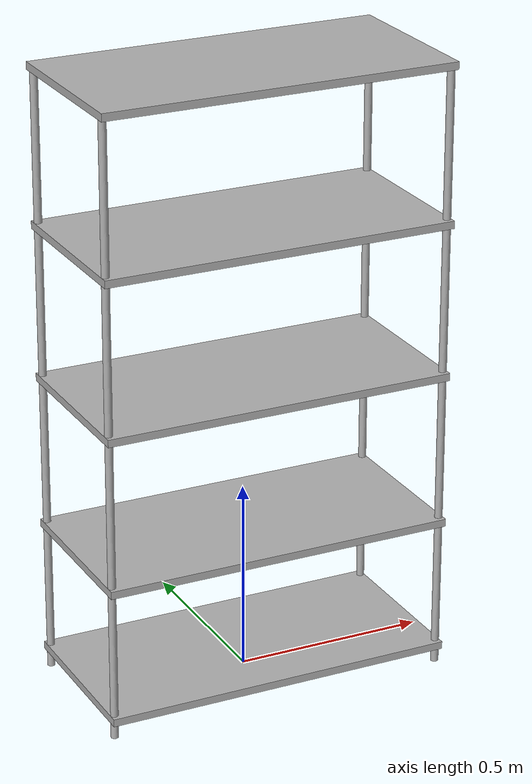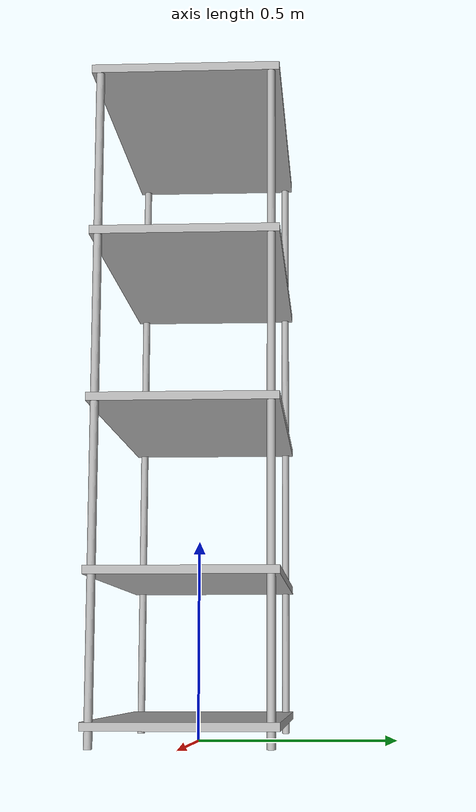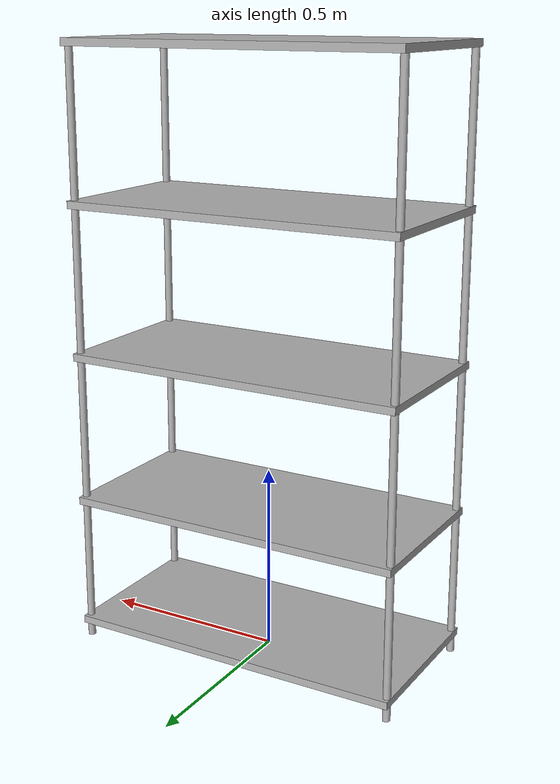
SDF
<sdf version="1.6">
    <model name="metal_shelf">
        <static>true</static>
        <!-- Legs of the shelf -->
        <link name="leg_1">
            <pose>0.45 -0.205 0.8 0 0 0</pose>
            <visual name="visual_leg_1">
                <geometry>
                    <cylinder>
                        <radius>0.01</radius>
                        <length>1.6</length>
                    </cylinder>
                </geometry>
                <material>
                    <ambient>0.7 0.7 0.7 1</ambient> <!-- Gray color -->
                </material>
            </visual>
            <collision name="collision_leg_1">
                <geometry>
                    <cylinder>
                        <radius>0.01</radius>
                        <length>1.6</length>
                    </cylinder>
                </geometry>
            </collision>
        </link>
        <link name="leg_2">
            <pose>0.45 0.205 0.8 0 0 0</pose>
            <visual name="visual_leg_2">
                <geometry>
                    <cylinder>
                        <radius>0.01</radius>
                        <length>1.6</length>
                    </cylinder>
                </geometry>
                <material>
                    <ambient>0.7 0.7 0.7 1</ambient>
                </material>
            </visual>
            <collision name="collision_leg_2">
                <geometry>
                    <cylinder>
                        <radius>0.01</radius>
                        <length>1.6</length>
                    </cylinder>
                </geometry>
            </collision>
        </link>
        <link name="leg_3">
            <pose>-0.45 -0.205 0.8 0 0 0</pose>
            <visual name="visual_leg_3">
                <geometry>
                    <cylinder>
                        <radius>0.01</radius>
                        <length>1.6</length>
                    </cylinder>
                </geometry>
                <material>
                    <ambient>0.7 0.7 0.7 1</ambient>
                </material>
            </visual>
            <collision name="collision_leg_3">
                <geometry>
                    <cylinder>
                        <radius>0.01</radius>
                        <length>1.6</length>
                    </cylinder>
                </geometry>
            </collision>
        </link>
        <link name="leg_4">
            <pose>-0.45 0.205 0.8 0 0 0</pose>
            <visual name="visual_leg_4">
                <geometry>
                    <cylinder>
                        <radius>0.01</radius>
                        <length>1.6</length>
                    </cylinder>
                </geometry>
                <material>
                    <ambient>0.7 0.7 0.7 1</ambient>
                </material>
            </visual>
            <collision name="collision_leg_4">
                <geometry>
                    <cylinder>
                        <radius>0.01</radius>
                        <length>1.6</length>
                    </cylinder>
                </geometry>
            </collision>
        </link>

        <!-- Shelves -->
        <link name="shelf_1">
            <pose>0 0 0.05 0 0 0</pose>
            <visual name="visual_shelf_1">
                <geometry>
                    <box>
                        <size>0.92 0.45 0.02</size>
                    </box>
                </geometry>
                <material>
                    <ambient>0.7 0.7 0.7 1</ambient>
                </material>
            </visual>
            <collision name="collision_shelf_1">
                <geometry>
                    <box>
                        <size>0.92 0.45 0.02</size>
                    </box>
                </geometry>
            </collision>
        </link>
        <link name="shelf_2">
            <pose>0 0 0.4 0 0 0</pose>
            <visual name="visual_shelf_2">
                <geometry>
                    <box>
                        <size>0.92 0.45 0.02</size>
                    </box>
                </geometry>
                <material>
                    <ambient>0.7 0.7 0.7 1</ambient>
                </material>
            </visual>
            <collision name="collision_shelf_2">
                <geometry>
                    <box>
                        <size>0.92 0.45 0.02</size>
                    </box>
                </geometry>
            </collision>
        </link>
        <link name="shelf_3">
            <pose>0 0 0.8 0 0 0</pose>
            <visual name="visual_shelf_3">
                <geometry>
                    <box>
                        <size>0.92 0.45 0.02</size>
                    </box>
                </geometry>
                <material>
                    <ambient>0.7 0.7 0.7 1</ambient>
                </material>
            </visual>
            <collision name="collision_shelf_3">
                <geometry>
                    <box>
                        <size>0.92 0.45 0.02</size>
                    </box>
                </geometry>
            </collision>
        </link>
        <link name="shelf_4">
            <pose>0 0 1.2 0 0 0</pose>
            <visual name="visual_shelf_4">
                <geometry>
                    <box>
                        <size>0.92 0.45 0.02</size>
                    </box>
                </geometry>
                <material>
                    <ambient>0.7 0.7 0.7 1</ambient>
                </material>
            </visual>
            <collision name="collision_shelf_4">
                <geometry>
                    <box>
                        <size>0.92 0.45 0.02</size>
                    </box>
                </geometry>
            </collision>
        </link>
        <link name="shelf_5">
            <pose>0 0 1.6 0 0 0</pose>
            <visual name="visual_shelf_5">
                <geometry>
                    <box>
                        <size>0.92 0.45 0.02</size>
                    </box>
                </geometry>
                <material>
                    <ambient>0.7 0.7 0.7 1</ambient>
                </material>
            </visual>
            <collision name="collision_shelf_5">
                <geometry>
                    <box>
                        <size>0.92 0.45 0.02</size>
                    </box>
                </geometry>
            </collision>
        </link>
    </model>
</sdf>
